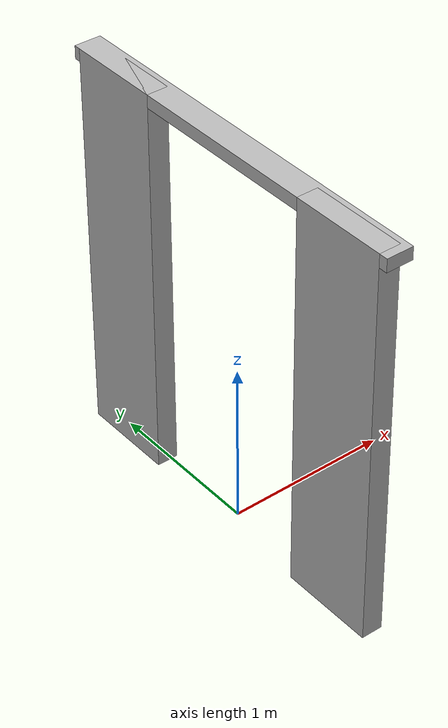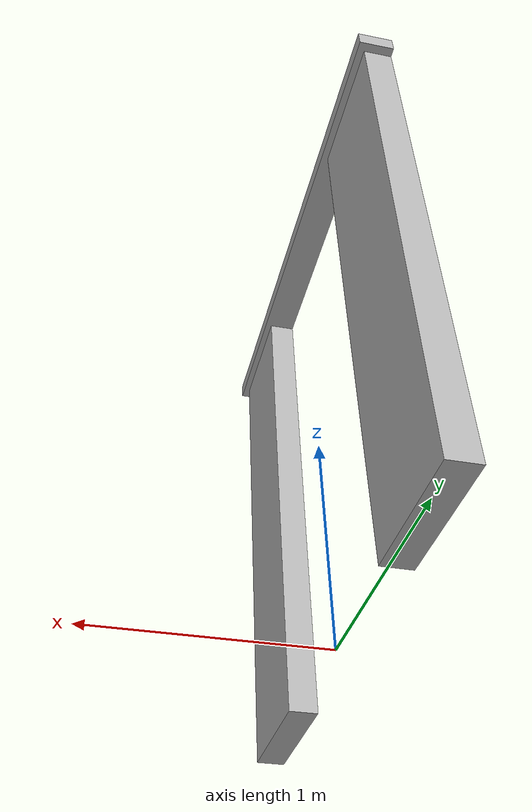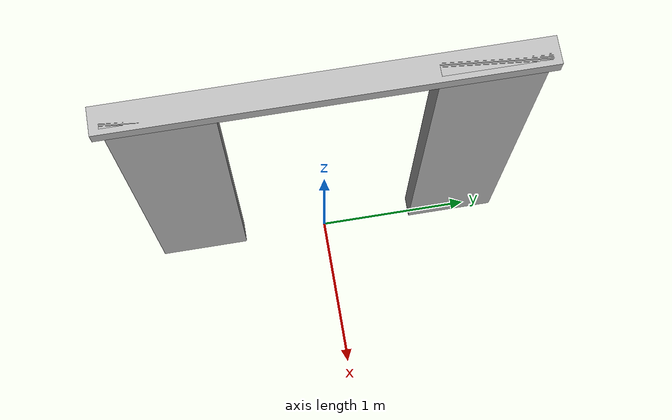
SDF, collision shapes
<?xml version="1.0" ?>
<sdf version="1.6">
  <model name="aws_robomaker_residential_Curtain_01">
    <link name="link">
      <inertial>
        <mass>1</mass>
      </inertial>
      <collision name="asw_curtain_01_collision_collider_box">
        <pose>-0.029826 -0.859375 1.222486 0.0 -0.0 0.0</pose>
        <geometry>
          <box>
            <size>0.128573 0.584579 2.444975</size>
          </box>
        </geometry>
      </collision>
      <collision name="asw_curtain_01_collision_collider_box.001">
        <pose>-0.029826 0.894402 1.222486 0.0 -0.0 0.0</pose>
        <geometry>
          <box>
            <size>0.128573 0.584579 2.444975</size>
          </box>
        </geometry>
      </collision>
      <collision name="asw_curtain_01_collision_collider_box.002">
        <pose>-0.013773 0.011117 2.405972 0.0 -0.0 0.0</pose>
        <geometry>
          <box>
            <size>0.160678 2.428851 0.078003</size>
          </box>
        </geometry>
      </collision>
      <visual name="visual">
        <geometry>
          <mesh>
            <uri>model://aws_robomaker_residential_Curtain_01/meshes/aws_Curtain_01_visual.DAE</uri>
          </mesh>
        </geometry>
        <meta> <layer> 2 </layer></meta>
      </visual>
    </link>
	<static>1</static>
  </model>
</sdf>
